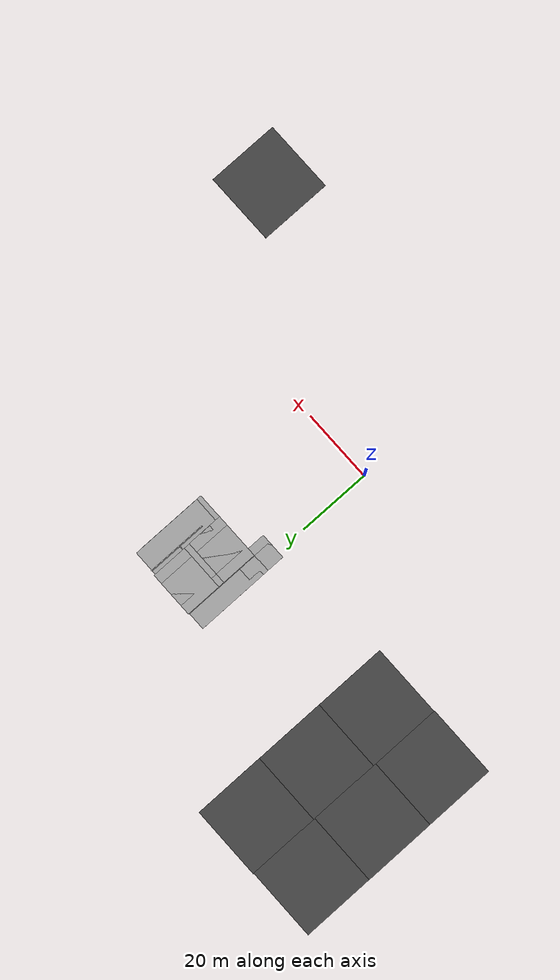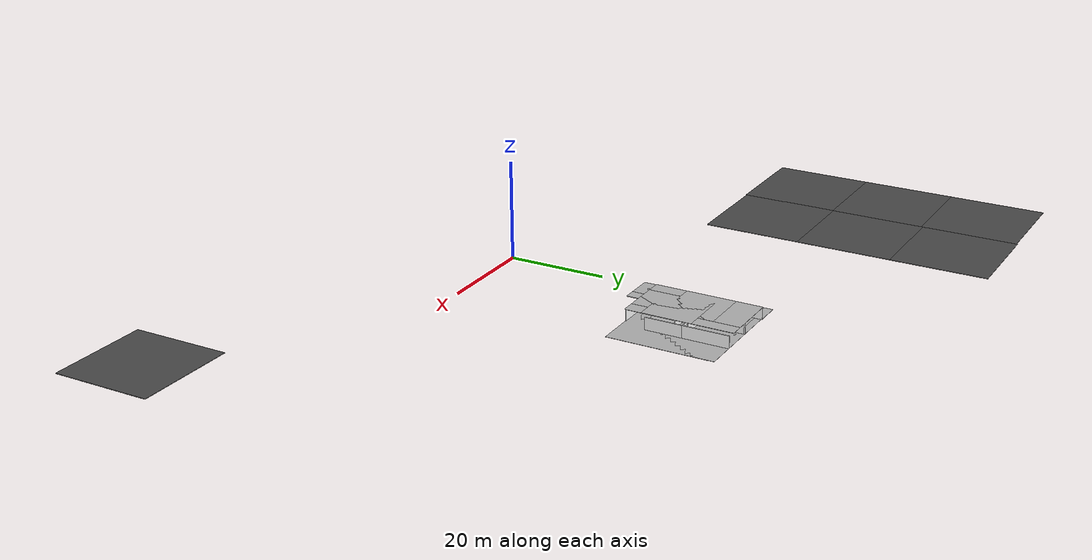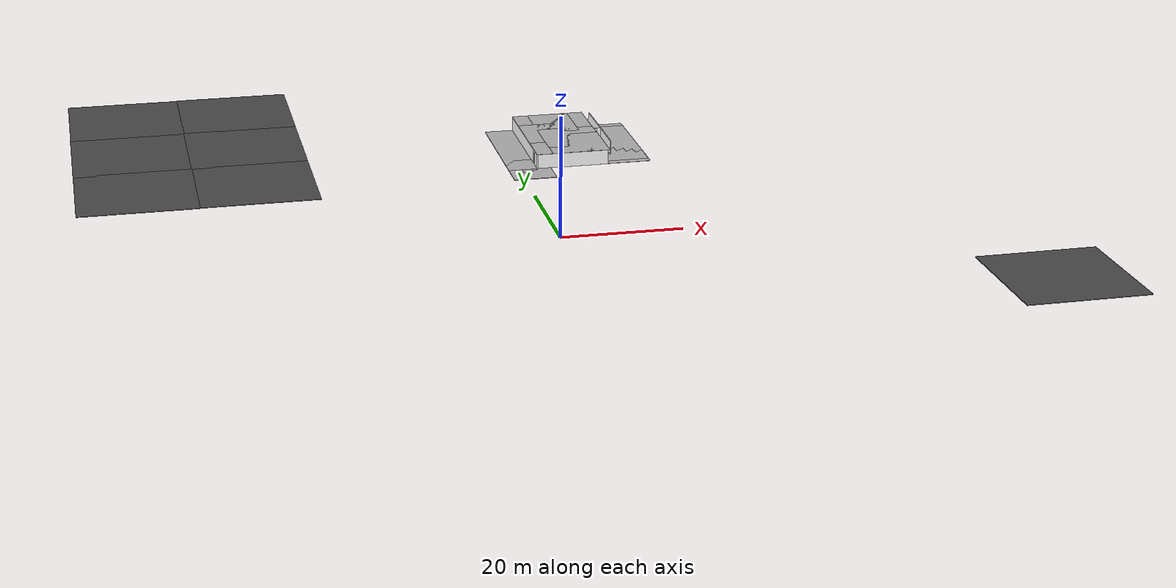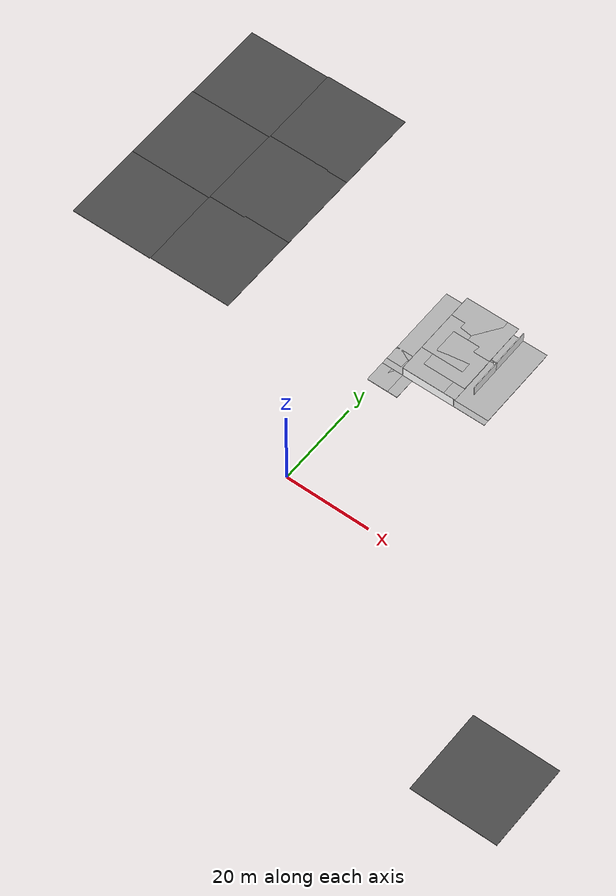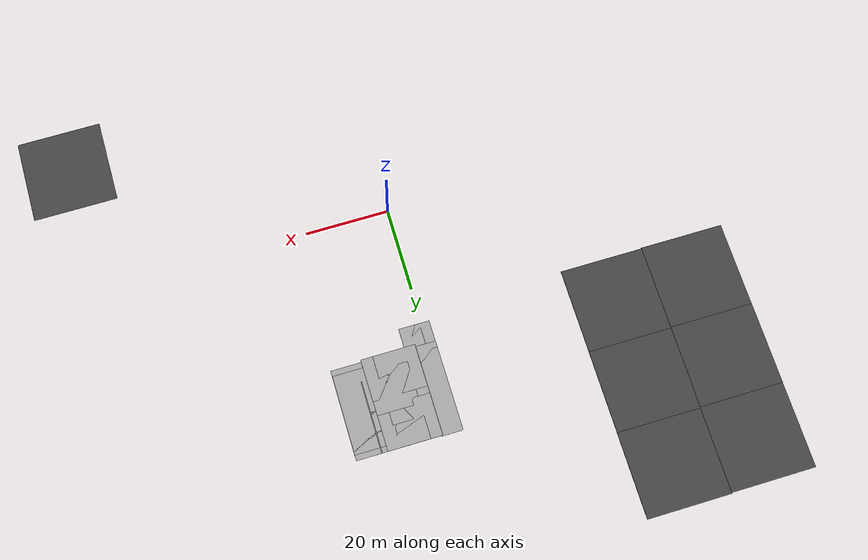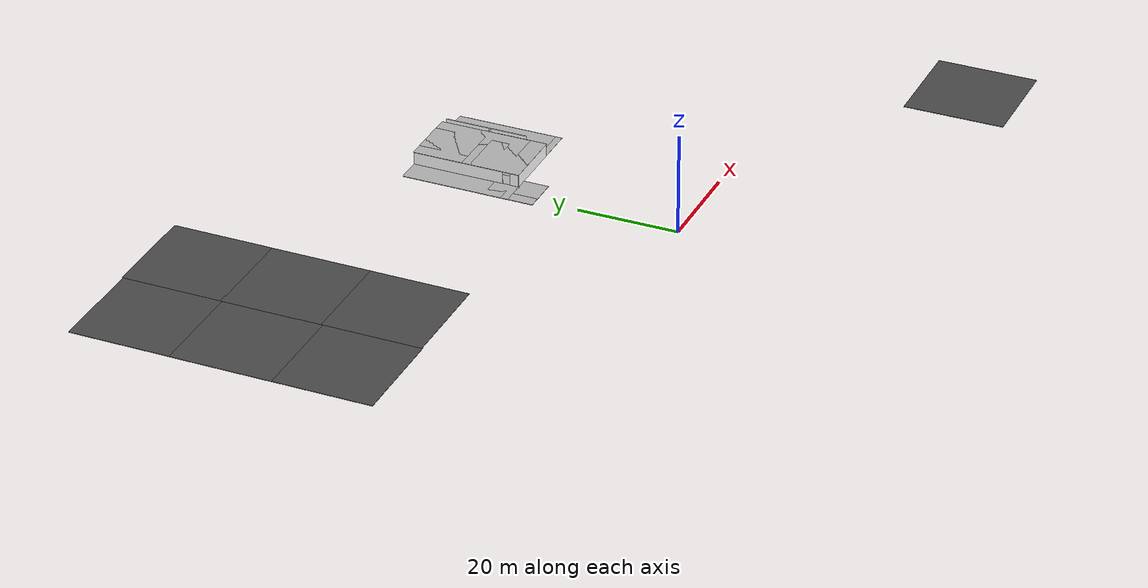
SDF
<sdf version="1.6">
 <world name="default">
  <model name="mainoffice">
   <pose>42.7555 15.4488 0 0 -0 0</pose>
   <link name="Wall_125">
    <collision name="Wall_125_Collision">
     <geometry><box><size>4.25 0.15 2.5</size></box></geometry>
     <pose>0 0 1.25 0 -0 0</pose>
    </collision>
    <visual name="Wall_125_Visual">
     <pose>0 0 1.25 0 -0 0</pose>
     <geometry><box><size>4.25 0.15 2.5</size></box></geometry>
     <material>
      <script>
       <uri>model://office_env/materials/scripts</uri>
       <uri>model://office_env/materials/textures</uri>
       <name>wall</name>
      </script>
      <ambient>1 1 1 1</ambient>
     </material>
    </visual>
    <pose>-30.1665 27.2379 0 0 -0 3.14159</pose>
   </link>
   <link name="Wall_126">
    <pose>-32.2165 33.1629 0 0 -0 1.5708</pose>
    <visual name="Wall_126_Visual_0">
     <pose>-5.66049 0 1.25 0 -0 0</pose>
     <geometry><box><size>0.679016 0.15 2.5</size></box></geometry>
     <material>
      <script>
       <uri>model://office_env/materials/scripts</uri>
       <uri>model://office_env/materials/textures</uri>
       <name>wall</name>
      </script>
      <ambient>1 1 1 1</ambient>
     </material>
    </visual>
    <collision name="Wall_126_Collision_0">
     <geometry><box><size>0.679016 0.15 2.5</size></box></geometry>
     <pose>-5.66049 0 1.25 0 -0 0</pose>
    </collision>
    <visual name="Wall_126_Visual_1">
     <pose>1.08951 0 1.25 0 -0 0</pose>
     <geometry><box><size>9.82098 0.15 2.5</size></box></geometry>
     <material>
      <script>
       <uri>model://office_env/materials/scripts</uri>
       <uri>model://office_env/materials/textures</uri>
       <name>wall</name>
      </script>
      <ambient>1 1 1 1</ambient>
     </material>
    </visual>
    <collision name="Wall_126_Collision_1">
     <geometry><box><size>9.82098 0.15 2.5</size></box></geometry>
     <pose>1.08951 0 1.25 0 -0 0</pose>
    </collision>
    <visual name="Wall_126_Visual_2">
     <pose>-4.57098 0 2.25 0 -0 0</pose>
     <geometry><box><size>1.5 0.15 0.5</size></box></geometry>
     <material>
      <script>
       <uri>model://office_env/materials/scripts</uri>
       <uri>model://office_env/materials/textures</uri>
       <name>wall</name>
      </script>
      <ambient>1 1 1 1</ambient>
     </material>
    </visual>
    <collision name="Wall_126_Collision_2">
     <geometry><box><size>1.5 0.15 0.5</size></box></geometry>
     <pose>-4.57098 0 2.25 0 -0 0</pose>
    </collision>
   </link>
   <link name="Wall_128">
    <collision name="Wall_128_Collision">
     <geometry><box><size>0.25 0.15 2.5</size></box></geometry>
     <pose>0 0 1.25 0 -0 0</pose>
    </collision>
    <visual name="Wall_128_Visual">
     <pose>0 0 1.25 0 -0 0</pose>
     <geometry><box><size>0.25 0.15 2.5</size></box></geometry>
     <material>
      <script>
       <uri>model://office_env/materials/scripts</uri>
       <uri>model://office_env/materials/textures</uri>
       <name>wall</name>
      </script>
      <ambient>1 1 1 1</ambient>
     </material>
    </visual>
    <pose>-32.2165 39.1379 0 0 -0 1.5708</pose>
   </link>
   <link name="Wall_130">
    <pose>-28.8573 30.0928 0 0 -0 0</pose>
    <visual name="Wall_130_Visual_0">
     <pose>-1.12067 0 1.25 0 -0 0</pose>
     <geometry><box><size>4.75866 0.15 2.5</size></box></geometry>
     <material>
      <script>
       <uri>model://office_env/materials/scripts</uri>
       <uri>model://office_env/materials/textures</uri>
       <name>wall</name>
      </script>
      <ambient>1 1 1 1</ambient>
     </material>
    </visual>
    <collision name="Wall_130_Collision_0">
     <geometry><box><size>4.75866 0.15 2.5</size></box></geometry>
     <pose>-1.12067 0 1.25 0 -0 0</pose>
    </collision>
    <visual name="Wall_130_Visual_1">
     <pose>3.12933 0 1.25 0 -0 0</pose>
     <geometry><box><size>0.741337 0.15 2.5</size></box></geometry>
     <material>
      <script>
       <uri>model://office_env/materials/scripts</uri>
       <uri>model://office_env/materials/textures</uri>
       <name>wall</name>
      </script>
      <ambient>1 1 1 1</ambient>
     </material>
    </visual>
    <collision name="Wall_130_Collision_1">
     <geometry><box><size>0.741337 0.15 2.5</size></box></geometry>
     <pose>3.12933 0 1.25 0 -0 0</pose>
    </collision>
    <visual name="Wall_130_Visual_2">
     <pose>2.00866 0 2.25 0 -0 0</pose>
     <geometry><box><size>1.5 0.15 0.5</size></box></geometry>
     <material>
      <script>
       <uri>model://office_env/materials/scripts</uri>
       <uri>model://office_env/materials/textures</uri>
       <name>wall</name>
      </script>
      <ambient>1 1 1 1</ambient>
     </material>
    </visual>
    <collision name="Wall_130_Collision_2">
     <geometry><box><size>1.5 0.15 0.5</size></box></geometry>
     <pose>2.00866 0 2.25 0 -0 0</pose>
    </collision>
   </link>
   <link name="Wall_131">
    <collision name="Wall_131_Collision">
     <geometry><box><size>7.5 0.15 2.5</size></box></geometry>
     <pose>0 0 1.25 0 -0 0</pose>
    </collision>
    <visual name="Wall_131_Visual">
     <pose>0 0 1.25 0 -0 0</pose>
     <geometry><box><size>7.5 0.15 2.5</size></box></geometry>
     <material>
      <script>
       <uri>model://office_env/materials/scripts</uri>
       <uri>model://office_env/materials/textures</uri>
       <name>wall</name>
      </script>
      <ambient>1 1 1 1</ambient>
     </material>
    </visual>
    <pose>-25.4323 26.4178 0 0 0 -1.5708</pose>
   </link>
   <link name="Wall_133">
    <collision name="Wall_133_Collision">
     <geometry><box><size>4.75 0.15 2.5</size></box></geometry>
     <pose>0 0 1.25 0 -0 0</pose>
    </collision>
    <visual name="Wall_133_Visual">
     <pose>0 0 1.25 0 -0 0</pose>
     <geometry><box><size>4.75 0.15 2.5</size></box></geometry>
     <material>
      <script>
       <uri>model://office_env/materials/scripts</uri>
       <uri>model://office_env/materials/textures</uri>
       <name>wall</name>
      </script>
      <ambient>1 1 1 1</ambient>
     </material>
    </visual>
    <pose>-28.1164 24.9379 0 0 0 -1.5708</pose>
   </link>
   <link name="Wall_135">
    <collision name="Wall_135_Collision">
     <geometry><box><size>9.25 0.15 2.5</size></box></geometry>
     <pose>0 0 1.25 0 -0 0</pose>
    </collision>
    <visual name="Wall_135_Visual">
     <pose>0 0 1.25 0 -0 0</pose>
     <geometry><box><size>9.25 0.15 2.5</size></box></geometry>
     <material>
      <script>
       <uri>model://office_env/materials/scripts</uri>
       <uri>model://office_env/materials/textures</uri>
       <name>wall</name>
      </script>
      <ambient>1 1 1 1</ambient>
     </material>
    </visual>
    <pose>-25.4323 34.6428 0 0 -0 1.5708</pose>
   </link>
   <link name="Wall_36">
    <collision name="Wall_36_Collision">
     <geometry><box><size>12.5 0.15 2.5</size></box></geometry>
     <pose>0 0 1.25 0 -0 0</pose>
    </collision>
    <visual name="Wall_36_Visual">
     <pose>0 0 1.25 0 -0 0</pose>
     <geometry><box><size>12.5 0.15 2.5</size></box></geometry>
     <material>
      <script>
       <uri>model://office_env/materials/scripts</uri>
       <uri>model://office_env/materials/textures</uri>
       <name>wall</name>
      </script>
      <ambient>1 1 1 1</ambient>
     </material>
    </visual>
    <pose>-33.2741 17.975 0 0 -0 3.14159</pose>
   </link>
   <link name="Wall_37">
    <pose>-39.4491 28.65 0 0 -0 1.5708</pose>
    <visual name="Wall_37_Visual_0">
     <pose>-9.83172 0 1.25 0 -0 0</pose>
     <geometry><box><size>1.83655 0.15 2.5</size></box></geometry>
     <material>
      <script>
       <uri>model://office_env/materials/scripts</uri>
       <uri>model://office_env/materials/textures</uri>
       <name>wall</name>
      </script>
      <ambient>1 1 1 1</ambient>
     </material>
    </visual>
    <collision name="Wall_37_Collision_0">
     <geometry><box><size>1.83655 0.15 2.5</size></box></geometry>
     <pose>-9.83172 0 1.25 0 -0 0</pose>
    </collision>
    <visual name="Wall_37_Visual_1">
     <pose>1.66828 0 1.25 0 -0 0</pose>
     <geometry><box><size>18.1634 0.15 2.5</size></box></geometry>
     <material>
      <script>
       <uri>model://office_env/materials/scripts</uri>
       <uri>model://office_env/materials/textures</uri>
       <name>wall</name>
      </script>
      <ambient>1 1 1 1</ambient>
     </material>
    </visual>
    <collision name="Wall_37_Collision_1">
     <geometry><box><size>18.1634 0.15 2.5</size></box></geometry>
     <pose>1.66828 0 1.25 0 -0 0</pose>
    </collision>
    <visual name="Wall_37_Visual_2">
     <pose>-8.16345 0 2.25 0 -0 0</pose>
     <geometry><box><size>1.5 0.15 0.5</size></box></geometry>
     <material>
      <script>
       <uri>model://office_env/materials/scripts</uri>
       <uri>model://office_env/materials/textures</uri>
       <name>wall</name>
      </script>
      <ambient>1 1 1 1</ambient>
     </material>
    </visual>
    <collision name="Wall_37_Collision_2">
     <geometry><box><size>1.5 0.15 0.5</size></box></geometry>
     <pose>-8.16345 0 2.25 0 -0 0</pose>
    </collision>
   </link>
   <static>1</static>
  </model>
  <model name="asphalt_plane_0">
   <static>1</static>
   <link name="link">
    <collision name="collision"><geometry><box><size>20 20 0.1</size></box></geometry></collision>
    <visual name="visual">
     <cast_shadows>0</cast_shadows>
     <geometry><box><size>20 20 0.1</size></box></geometry>
     <material>
      <script>
       <uri>model://asphalt_plane/materials/scripts</uri>
       <uri>model://asphalt_plane/materials/textures</uri>
       <name>vrc/asphalt</name>
      </script>
     </material>
    </visual>
   </link>
   <pose>-64.5165 75.1071 0 0 -0 0</pose>
  </model>
  <model name="asphalt_plane_1">
   <static>1</static>
   <link name="link">
    <collision name="collision"><geometry><box><size>20 20 0.1</size></box></geometry></collision>
    <visual name="visual">
     <cast_shadows>0</cast_shadows>
     <geometry><box><size>20 20 0.1</size></box></geometry>
     <material>
      <script>
       <uri>model://asphalt_plane/materials/scripts</uri>
       <uri>model://asphalt_plane/materials/textures</uri>
       <name>vrc/asphalt</name>
      </script>
     </material>
    </visual>
   </link>
   <pose>-64.552 55.1303 0 0 -0 0</pose>
  </model>
  <model name="asphalt_plane_2">
   <static>1</static>
   <link name="link">
    <collision name="collision"><geometry><box><size>20 20 0.1</size></box></geometry></collision>
    <visual name="visual">
     <cast_shadows>0</cast_shadows>
     <geometry><box><size>20 20 0.1</size></box></geometry>
     <material>
      <script>
       <uri>model://asphalt_plane/materials/scripts</uri>
       <uri>model://asphalt_plane/materials/textures</uri>
       <name>vrc/asphalt</name>
      </script>
     </material>
    </visual>
   </link>
   <pose>-64.5299 35.7195 0 0 -0 0</pose>
  </model>
  <model name="asphalt_plane_7">
   <static>1</static>
   <link name="link">
    <collision name="collision"><geometry><box><size>20 20 0.1</size></box></geometry></collision>
    <visual name="visual">
     <cast_shadows>0</cast_shadows>
     <geometry><box><size>20 20 0.1</size></box></geometry>
     <material>
      <script>
       <uri>model://asphalt_plane/materials/scripts</uri>
       <uri>model://asphalt_plane/materials/textures</uri>
       <name>vrc/asphalt</name>
      </script>
     </material>
    </visual>
   </link>
   <pose>-44.6095 75.2915 0 0 -0 0</pose>
  </model>
  <model name="asphalt_plane_8">
   <static>1</static>
   <link name="link">
    <collision name="collision"><geometry><box><size>20 20 0.1</size></box></geometry></collision>
    <visual name="visual">
     <cast_shadows>0</cast_shadows>
     <geometry><box><size>20 20 0.1</size></box></geometry>
     <material>
      <script>
       <uri>model://asphalt_plane/materials/scripts</uri>
       <uri>model://asphalt_plane/materials/textures</uri>
       <name>vrc/asphalt</name>
      </script>
     </material>
    </visual>
   </link>
   <pose>-44.6396 55.5127 0 0 -0 0</pose>
  </model>
  <model name="asphalt_plane_9">
   <static>1</static>
   <link name="link">
    <collision name="collision"><geometry><box><size>20 20 0.1</size></box></geometry></collision>
    <visual name="visual">
     <cast_shadows>0</cast_shadows>
     <geometry><box><size>20 20 0.1</size></box></geometry>
     <material>
      <script>
       <uri>model://asphalt_plane/materials/scripts</uri>
       <uri>model://asphalt_plane/materials/textures</uri>
       <name>vrc/asphalt</name>
      </script>
     </material>
    </visual>
   </link>
   <pose>-44.6546 35.8741 0 0 -0 0</pose>
  </model>
  <model name="asphalt_plane">
   <static>1</static>
   <link name="link">
    <collision name="collision"><geometry><box><size>20 20 0.1</size></box></geometry></collision>
    <visual name="visual">
     <cast_shadows>0</cast_shadows>
     <geometry><box><size>20 20 0.1</size></box></geometry>
     <material>
      <script>
       <uri>model://asphalt_plane/materials/scripts</uri>
       <uri>model://asphalt_plane/materials/textures</uri>
       <name>vrc/asphalt</name>
      </script>
     </material>
    </visual>
   </link>
   <pose>70.7475 -31.5972 0 0 -0 0</pose>
  </model>
  <model name="table">
   <static>0</static>
   <link name="link">
    <collision name="surface">
     <pose>0 0 1 0 -0 0</pose>
     <geometry><box><size>1.5 0.8 0.03</size></box></geometry>
     <surface><friction><ode><mu>0.6</mu><mu2>0.6</mu2></ode></friction></surface>
    </collision>
    <visual name="visual1">
     <pose>0 0 1 0 -0 0</pose>
     <geometry><box><size>1.4 0.8 0.04</size></box></geometry>
     <material>
      <script><uri>file://media/materials/scripts/gazebo.material</uri><name>Gazebo/Wood</name></script>
     </material>
    </visual>
    <collision name="front_left_leg">
     <pose>0.68 0.38 0.5 0 -0 0</pose>
     <geometry><cylinder><radius>0.02</radius><length>1</length></cylinder></geometry>
    </collision>
    <visual name="front_left_leg">
     <pose>0.68 0.38 0.5 0 -0 0</pose>
     <geometry><cylinder><radius>0.02</radius><length>1</length></cylinder></geometry>
     <material>
      <script>
       <uri>model://office_env/materials/scripts</uri>
       <uri>model://office_env/materials/textures</uri>
       <name>wall</name>
      </script>
     </material>
    </visual>
    <collision name="front_right_leg">
     <pose>0.68 -0.38 0.5 0 -0 0</pose>
     <geometry><cylinder><radius>0.02</radius><length>1</length></cylinder></geometry>
    </collision>
    <visual name="front_right_leg">
     <pose>0.68 -0.38 0.5 0 -0 0</pose>
     <geometry><cylinder><radius>0.02</radius><length>1</length></cylinder></geometry>
     <material>
      <script>
       <uri>model://office_env/materials/scripts</uri>
       <uri>model://office_env/materials/textures</uri>
       <name>wall</name>
      </script>
     </material>
    </visual>
    <collision name="back_right_leg">
     <pose>-0.68 -0.38 0.5 0 -0 0</pose>
     <geometry><cylinder><radius>0.02</radius><length>1</length></cylinder></geometry>
    </collision>
    <visual name="back_right_leg">
     <pose>-0.68 -0.38 0.5 0 -0 0</pose>
     <geometry><cylinder><radius>0.02</radius><length>1</length></cylinder></geometry>
     <material>
      <script>
       <uri>model://office_env/materials/scripts</uri>
       <uri>model://office_env/materials/textures</uri>
       <name>wall</name>
      </script>
     </material>
    </visual>
    <collision name="back_left_leg">
     <pose>-0.68 0.38 0.5 0 -0 0</pose>
     <geometry><cylinder><radius>0.02</radius><length>1</length></cylinder></geometry>
    </collision>
    <visual name="back_left_leg">
     <pose>-0.68 0.38 0.5 0 -0 0</pose>
     <geometry><cylinder><radius>0.02</radius><length>1</length></cylinder></geometry>
     <material>
      <script>
       <uri>model://office_env/materials/scripts</uri>
       <uri>model://office_env/materials/textures</uri>
       <name>wall</name>
      </script>
     </material>
    </visual>
    <inertial>
     <inertia><ixx>1</ixx><ixy>0</ixy><ixz>0</ixz><iyy>1</iyy><iyz>0</iyz><izz>1</izz></inertia>
     <mass>1</mass>
    </inertial>
   </link>
   <pose>6.75899 49.9498 0.034999 0 -0 0</pose>
  </model>
  <model name="Floor_50">
   <link name="main">
    <pose>0 0 0.01 0 -0 0</pose>
    <collision name="main_Collision"><geometry><box><size>20 20 0.05</size></box></geometry></collision>
    <visual name="main_Visual">
     <geometry><box><size>20 20 0.05</size></box></geometry>
     <material>
      <script>
       <uri>model://Floor_medium/materials/scripts</uri>
       <uri>model://Floor_medium/materials/textures</uri>
       <name>floor</name>
      </script>
     </material>
    </visual>
   </link>
   <static>1</static>
   <pose>13.27 44.6882 0 0 -0 0</pose>
  </model>
  <model name="Floor_51">
   <link name="main">
    <pose>0 0 0.01 0 -0 0</pose>
    <collision name="main_Collision"><geometry><box><size>20 20 0.05</size></box></geometry></collision>
    <visual name="main_Visual">
     <geometry><box><size>20 20 0.05</size></box></geometry>
     <material>
      <script>
       <uri>model://Floor_medium/materials/scripts</uri>
       <uri>model://Floor_medium/materials/textures</uri>
       <name>floor</name>
      </script>
     </material>
    </visual>
   </link>
   <static>1</static>
   <pose>13.3202 43.3668 0 0 -0 0</pose>
  </model>
  <model name="outdoor_plane_34">
   <static>1</static>
   <link name="link">
    <collision name="collision"><geometry><box><size>5 5 0.1</size></box></geometry></collision>
    <visual name="visual">
     <cast_shadows>0</cast_shadows>
     <geometry><box><size>5 5 0.1</size></box></geometry>
     <material>
      <script>
       <uri>model://outdoor_planesmall/materials/scripts</uri>
       <uri>model://outdoor_planesmall/materials/textures</uri>
       <name>outdss/Image</name>
      </script>
     </material>
    </visual>
   </link>
   <pose>3.18164 30.8566 0 0 -0 0</pose>
  </model>
  <model name="outdoor_plane_35">
   <static>1</static>
   <link name="link">
    <collision name="collision"><geometry><box><size>5 5 0.1</size></box></geometry></collision>
    <visual name="visual">
     <cast_shadows>0</cast_shadows>
     <geometry><box><size>5 5 0.1</size></box></geometry>
     <material>
      <script>
       <uri>model://outdoor_planesmall/materials/scripts</uri>
       <uri>model://outdoor_planesmall/materials/textures</uri>
       <name>outdss/Image</name>
      </script>
     </material>
    </visual>
   </link>
   <pose>0.821095 35.7571 0 0 -0 0</pose>
  </model>
  <model name="outdoor_plane_36">
   <static>1</static>
   <link name="link">
    <collision name="collision"><geometry><box><size>5 5 0.1</size></box></geometry></collision>
    <visual name="visual">
     <cast_shadows>0</cast_shadows>
     <geometry><box><size>5 5 0.1</size></box></geometry>
     <material>
      <script>
       <uri>model://outdoor_planesmall/materials/scripts</uri>
       <uri>model://outdoor_planesmall/materials/textures</uri>
       <name>outdss/Image</name>
      </script>
     </material>
    </visual>
   </link>
   <pose>0.830037 30.8668 0 0 -0 0</pose>
  </model>
  <model name="outdoor_plane_37">
   <static>1</static>
   <link name="link">
    <collision name="collision"><geometry><box><size>5 20 0.1</size></box></geometry></collision>
    <visual name="visual">
     <cast_shadows>0</cast_shadows>
     <geometry><box><size>5 20 0.1</size></box></geometry>
     <material>
      <script>
       <uri>model://outdoor_plane/materials/scripts</uri>
       <uri>model://outdoor_plane/materials/textures</uri>
       <name>outds/Image</name>
      </script>
     </material>
    </visual>
   </link>
   <pose>0.816783 44.8307 0 0 -0 0</pose>
  </model>
  <model name="Floor_3_clone_25">
   <link name="main">
    <pose>0 0 0.01 0 -0 0</pose>
    <collision name="main_Collision"><geometry><box><size>10 10 0.05</size></box></geometry></collision>
    <visual name="main_Visual">
     <geometry><box><size>10 10 0.05</size></box></geometry>
     <material>
      <script>
       <uri>model://Floor_small/materials/scripts</uri>
       <uri>model://Floor_small/materials/textures</uri>
       <name>floor</name>
      </script>
     </material>
    </visual>
   </link>
   <static>1</static>
   <pose>11.0137 49.9805 2.5 0 -0 0</pose>
  </model>
  <model name="Floor_3_clone_26">
   <link name="main">
    <pose>0 0 0.01 0 -0 0</pose>
    <collision name="main_Collision"><geometry><box><size>10 10 0.05</size></box></geometry></collision>
    <visual name="main_Visual">
     <geometry><box><size>10 10 0.05</size></box></geometry>
     <material>
      <script>
       <uri>model://Floor_small/materials/scripts</uri>
       <uri>model://Floor_small/materials/textures</uri>
       <name>floor</name>
      </script>
     </material>
    </visual>
   </link>
   <static>1</static>
   <pose>11.036 41.6665 2.5 0 -0 0</pose>
  </model>
  <model name="Floor_3_clone_27">
   <link name="main">
    <pose>0 0 0.01 0 -0 0</pose>
    <collision name="main_Collision"><geometry><box><size>10 10 0.05</size></box></geometry></collision>
    <visual name="main_Visual">
     <geometry><box><size>10 10 0.05</size></box></geometry>
     <material>
      <script>
       <uri>model://Floor_small/materials/scripts</uri>
       <uri>model://Floor_small/materials/textures</uri>
       <name>floor</name>
      </script>
     </material>
    </visual>
   </link>
   <static>1</static>
   <pose>11.108 38.352 2.5 0 -0 0</pose>
  </model>
  <model name="Floor_3_clone_28">
   <link name="main">
    <pose>0 0 0.01 0 -0 0</pose>
    <collision name="main_Collision"><geometry><box><size>10 10 0.05</size></box></geometry></collision>
    <visual name="main_Visual">
     <geometry><box><size>10 10 0.05</size></box></geometry>
     <material>
      <script>
       <uri>model://Floor_small/materials/scripts</uri>
       <uri>model://Floor_small/materials/textures</uri>
       <name>floor</name>
      </script>
     </material>
    </visual>
   </link>
   <static>1</static>
   <pose>8.29914 38.3499 2.5 0 -0 0</pose>
  </model>
  <model name="Floor_3_clone_29">
   <link name="main">
    <pose>0 0 0.01 0 -0 0</pose>
    <collision name="main_Collision"><geometry><box><size>10 10 0.05</size></box></geometry></collision>
    <visual name="main_Visual">
     <geometry><box><size>10 10 0.05</size></box></geometry>
     <material>
      <script>
       <uri>model://Floor_small/materials/scripts</uri>
       <uri>model://Floor_small/materials/textures</uri>
       <name>floor</name>
      </script>
     </material>
    </visual>
   </link>
   <static>1</static>
   <pose>8.28978 49.9829 2.5 0 -0 0</pose>
  </model>
  <model name="Floor_3_clone_30">
   <link name="main">
    <pose>0 0 0.01 0 -0 0</pose>
    <collision name="main_Collision"><geometry><box><size>10 10 0.05</size></box></geometry></collision>
    <visual name="main_Visual">
     <geometry><box><size>10 10 0.05</size></box></geometry>
     <material>
      <script>
       <uri>model://Floor_small/materials/scripts</uri>
       <uri>model://Floor_small/materials/textures</uri>
       <name>floor</name>
      </script>
     </material>
    </visual>
   </link>
   <static>1</static>
   <pose>8.28357 44.6973 2.5 0 -0 0</pose>
  </model>
 </world>
</sdf>
